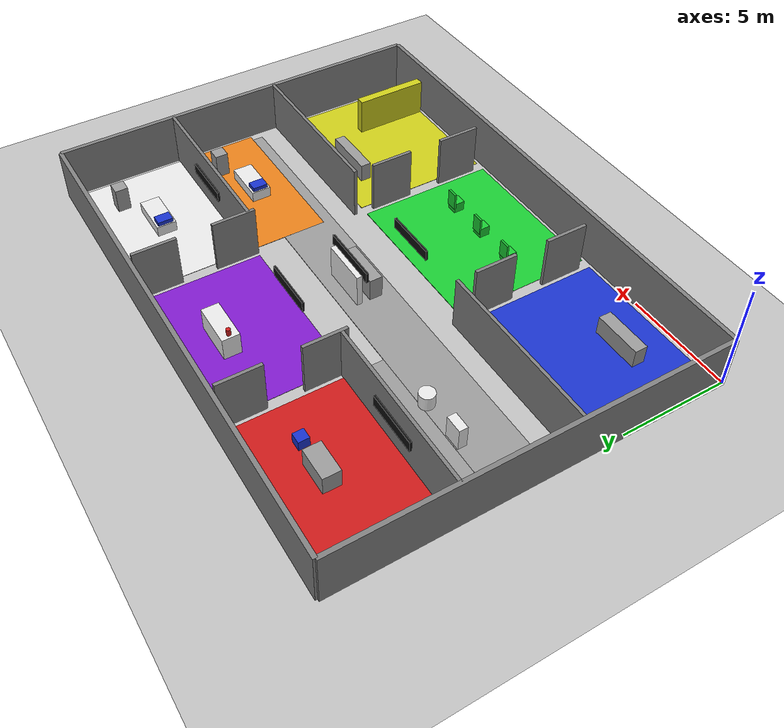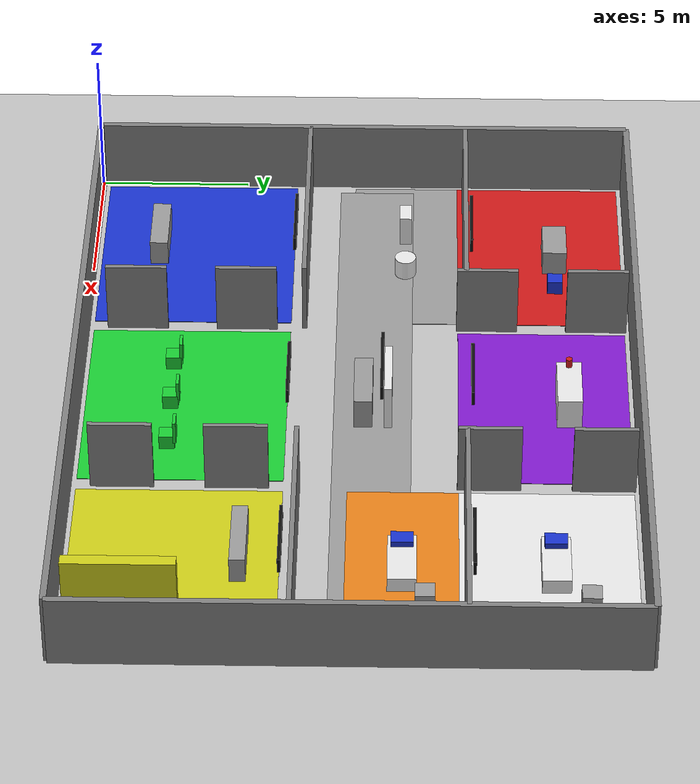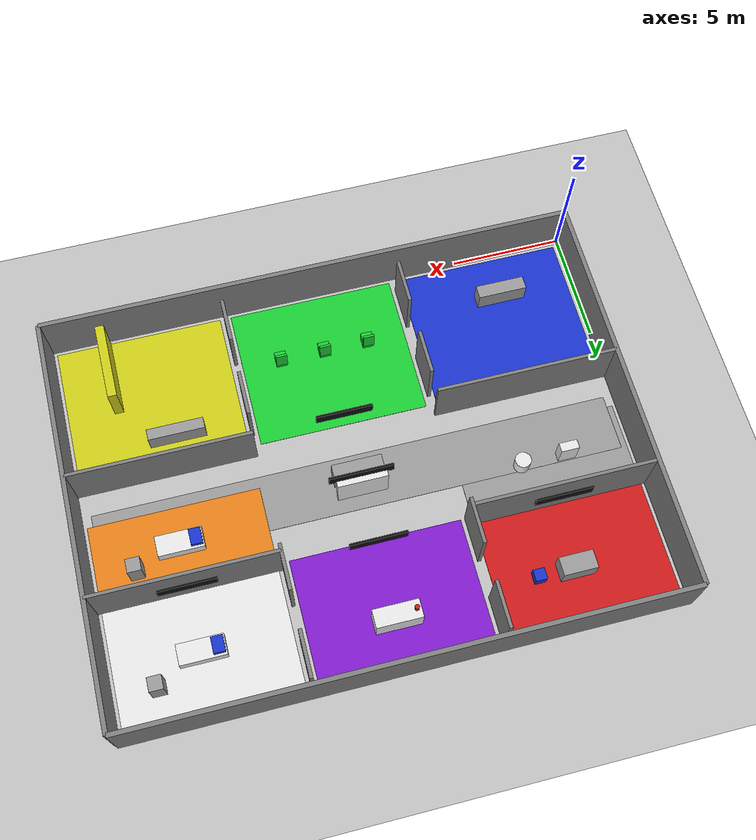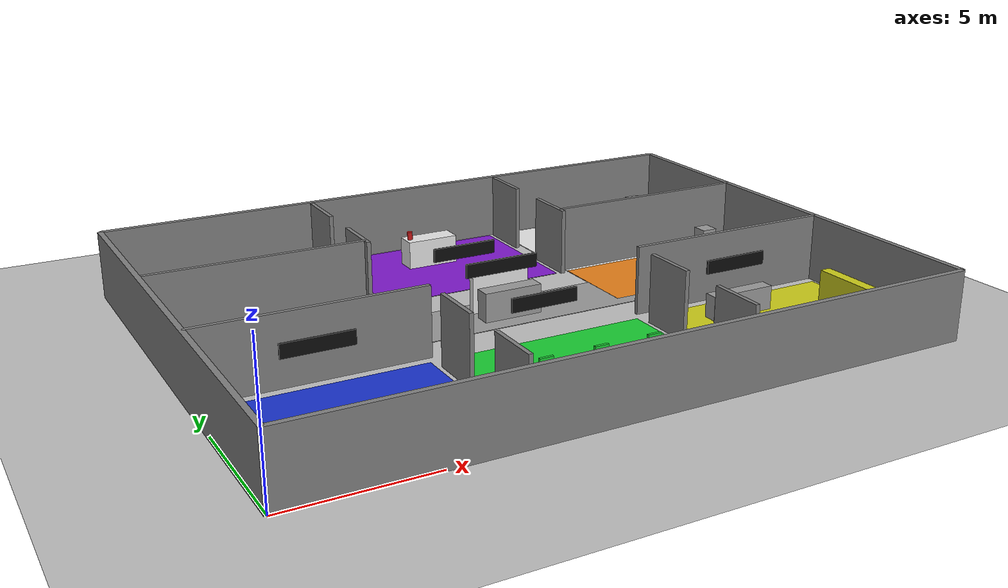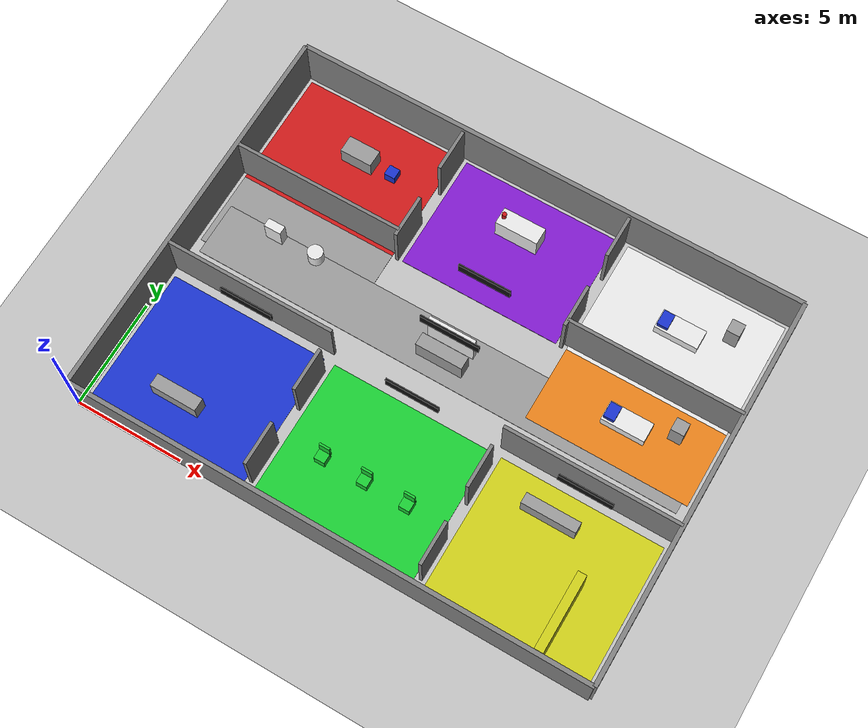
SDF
<sdf version="1.6">
 <world name="hospital_world">
  <gravity>0 0 -9.8</gravity>
  <plugin filename="gz-sim-sensors-system" name="gz::sim::systems::Sensors">
   <render_engine>ogre2</render_engine>
  </plugin>
  <plugin filename="gz-sim-contact-system" name="gz::sim::systems::Contact"/>
  <model name="ground_plane">
   <static>true</static>
   <link name="link">
    <collision name="collision">
     <geometry><plane><normal>0 0 1</normal><size>50 50</size></plane></geometry>
     <surface><friction><ode><mu>100000</mu><mu2>100000</mu2></ode></friction></surface>
    </collision>
    <visual name="visual">
     <geometry><plane><normal>0 0 1</normal><size>50 50</size></plane></geometry>
     <material><ambient>0.75 0.75 0.75 1</ambient><diffuse>0.75 0.75 0.75 1</diffuse></material>
    </visual>
   </link>
  </model>
  <light type="directional" name="sun">
   <cast_shadows>false</cast_shadows>
   <pose>0 0 15 0 0 0</pose>
   <diffuse>1 1 1 1</diffuse>
   <specular>0.5 0.5 0.5 1</specular>
   <direction>-0.5 0.3 -1</direction>
  </light>
  <physics type="ode"><real_time_factor>1.0</real_time_factor><max_step_size>0.005</max_step_size></physics>
  <scene><ambient>0.8 0.8 0.8 1</ambient><background>0.92 0.95 1.0 1</background></scene>
  <model name="outer_wall_bottom">
   <static>true</static>
   <pose>12 0 1.25 0 0 0</pose>
   <link name="link">
    <collision name="collision"><geometry><box><size>24 0.2 2.5</size></box></geometry></collision>
    <visual name="visual">
     <geometry><box><size>24 0.2 2.5</size></box></geometry>
     <material><ambient>0.5 0.5 0.5 1</ambient><diffuse>0.5 0.5 0.5 1</diffuse></material>
    </visual>
   </link>
  </model>
  <model name="outer_wall_top">
   <static>true</static>
   <pose>12 18 1.25 0 0 0</pose>
   <link name="link">
    <collision name="collision"><geometry><box><size>24 0.2 2.5</size></box></geometry></collision>
    <visual name="visual">
     <geometry><box><size>24 0.2 2.5</size></box></geometry>
     <material><ambient>0.5 0.5 0.5 1</ambient><diffuse>0.5 0.5 0.5 1</diffuse></material>
    </visual>
   </link>
  </model>
  <model name="outer_wall_left">
   <static>true</static>
   <pose>0 9 1.25 0 0 0</pose>
   <link name="link">
    <collision name="collision"><geometry><box><size>0.2 18 2.5</size></box></geometry></collision>
    <visual name="visual">
     <geometry><box><size>0.2 18 2.5</size></box></geometry>
     <material><ambient>0.5 0.5 0.5 1</ambient><diffuse>0.5 0.5 0.5 1</diffuse></material>
    </visual>
   </link>
  </model>
  <model name="outer_wall_right">
   <static>true</static>
   <pose>24 9 1.25 0 0 0</pose>
   <link name="link">
    <collision name="collision"><geometry><box><size>0.2 18 2.5</size></box></geometry></collision>
    <visual name="visual">
     <geometry><box><size>0.2 18 2.5</size></box></geometry>
     <material><ambient>0.5 0.5 0.5 1</ambient><diffuse>0.5 0.5 0.5 1</diffuse></material>
    </visual>
   </link>
  </model>
  <model name="floor_reception_blue">
   <static>true</static>
   <pose>4 3.5 0.01 0 0 0</pose>
   <link name="link">
    <visual name="visual">
     <geometry><box><size>7.5 6.5 0.02</size></box></geometry>
     <material><ambient>0.1 0.2 0.8 1</ambient><diffuse>0.1 0.2 0.8 1</diffuse></material>
    </visual>
   </link>
  </model>
  <model name="floor_waiting_green">
   <static>true</static>
   <pose>12 3.5 0.012 0 0 0</pose>
   <link name="link">
    <visual name="visual">
     <geometry><box><size>7.5 6.5 0.02</size></box></geometry>
     <material><ambient>0.1 0.8 0.2 1</ambient><diffuse>0.1 0.8 0.2 1</diffuse></material>
    </visual>
   </link>
  </model>
  <model name="floor_pharmacy_yellow">
   <static>true</static>
   <pose>20 3.5 0.014 0 0 0</pose>
   <link name="link">
    <visual name="visual">
     <geometry><box><size>7.5 6.5 0.02</size></box></geometry>
     <material><ambient>0.8 0.8 0.1 1</ambient><diffuse>0.8 0.8 0.1 1</diffuse></material>
    </visual>
   </link>
  </model>
  <model name="floor_diagnosis_red">
   <static>true</static>
   <pose>4 15 0.016 0 0 0</pose>
   <link name="link">
    <visual name="visual">
     <geometry><box><size>7.5 5.5 0.02</size></box></geometry>
     <material><ambient>0.8 0.1 0.1 1</ambient><diffuse>0.8 0.1 0.1 1</diffuse></material>
    </visual>
   </link>
  </model>
  <model name="floor_lab_purple">
   <static>true</static>
   <pose>12 15 0.018 0 0 0</pose>
   <link name="link">
    <visual name="visual">
     <geometry><box><size>7.5 5.5 0.02</size></box></geometry>
     <material><ambient>0.5 0.1 0.8 1</ambient><diffuse>0.5 0.1 0.8 1</diffuse></material>
    </visual>
   </link>
  </model>
  <model name="floor_ward1_white">
   <static>true</static>
   <pose>20 15 0.02 0 0 0</pose>
   <link name="link">
    <visual name="visual">
     <geometry><box><size>7.5 5.5 0.02</size></box></geometry>
     <material><ambient>0.9 0.9 0.9 1</ambient><diffuse>0.9 0.9 0.9 1</diffuse></material>
    </visual>
   </link>
  </model>
  <model name="floor_restroom_cyan">
   <static>true</static>
   <pose>4 10.5 0.022 0 0 0</pose>
   <link name="link">
    <visual name="visual">
     <geometry><box><size>7.5 3.5 0.02</size></box></geometry>
     <material><ambient>0.6 0.6 0.6 1</ambient><diffuse>0.6 0.6 0.6 1</diffuse></material>
    </visual>
   </link>
  </model>
  <model name="floor_corridor_gray">
   <static>true</static>
   <pose>12 9.5 0.024 0 0 0</pose>
   <link name="link">
    <visual name="visual">
     <geometry><box><size>23 2.5 0.02</size></box></geometry>
     <material><ambient>0.6 0.6 0.6 1</ambient><diffuse>0.6 0.6 0.6 1</diffuse></material>
    </visual>
   </link>
  </model>
  <model name="floor_ward2_orange">
   <static>true</static>
   <pose>20 10.5 0.026 0 0 0</pose>
   <link name="link">
    <visual name="visual">
     <geometry><box><size>7.5 3.5 0.02</size></box></geometry>
     <material><ambient>0.9 0.5 0.1 1</ambient><diffuse>0.9 0.5 0.1 1</diffuse></material>
    </visual>
   </link>
  </model>
  <model name="wall_reception_waiting_1">
   <static>true</static>
   <pose>8 1.7 1.25 0 0 0</pose>
   <link name="link">
    <collision name="collision">
     <geometry><box><size>0.15 1.9999999999999998 2.5</size></box></geometry>
    </collision>
    <visual name="visual">
     <geometry><box><size>0.15 1.9999999999999998 2.5</size></box></geometry>
     <material><ambient>0.5 0.5 0.5 1</ambient><diffuse>0.5 0.5 0.5 1</diffuse></material>
    </visual>
   </link>
  </model>
  <model name="wall_reception_waiting_2">
   <static>true</static>
   <pose>8 5.3 1.25 0 0 0</pose>
   <link name="link">
    <collision name="collision">
     <geometry><box><size>0.15 1.9999999999999998 2.5</size></box></geometry>
    </collision>
    <visual name="visual">
     <geometry><box><size>0.15 1.9999999999999998 2.5</size></box></geometry>
     <material><ambient>0.5 0.5 0.5 1</ambient><diffuse>0.5 0.5 0.5 1</diffuse></material>
    </visual>
   </link>
  </model>
  <model name="wall_waiting_pharmacy_1">
   <static>true</static>
   <pose>16 1.7 1.25 0 0 0</pose>
   <link name="link">
    <collision name="collision">
     <geometry><box><size>0.15 1.9999999999999998 2.5</size></box></geometry>
    </collision>
    <visual name="visual">
     <geometry><box><size>0.15 1.9999999999999998 2.5</size></box></geometry>
     <material><ambient>0.5 0.5 0.5 1</ambient><diffuse>0.5 0.5 0.5 1</diffuse></material>
    </visual>
   </link>
  </model>
  <model name="wall_waiting_pharmacy_2">
   <static>true</static>
   <pose>16 5.3 1.25 0 0 0</pose>
   <link name="link">
    <collision name="collision">
     <geometry><box><size>0.15 1.9999999999999998 2.5</size></box></geometry>
    </collision>
    <visual name="visual">
     <geometry><box><size>0.15 1.9999999999999998 2.5</size></box></geometry>
     <material><ambient>0.5 0.5 0.5 1</ambient><diffuse>0.5 0.5 0.5 1</diffuse></material>
    </visual>
   </link>
  </model>
  <model name="wall_diag_lab_1">
   <static>true</static>
   <pose>8 13.2 1.25 0 0 0</pose>
   <link name="link">
    <collision name="collision">
     <geometry><box><size>0.15 1.9999999999999998 2.5</size></box></geometry>
    </collision>
    <visual name="visual">
     <geometry><box><size>0.15 1.9999999999999998 2.5</size></box></geometry>
     <material><ambient>0.5 0.5 0.5 1</ambient><diffuse>0.5 0.5 0.5 1</diffuse></material>
    </visual>
   </link>
  </model>
  <model name="wall_diag_lab_2">
   <static>true</static>
   <pose>8 16.8 1.25 0 0 0</pose>
   <link name="link">
    <collision name="collision">
     <geometry><box><size>0.15 1.9999999999999998 2.5</size></box></geometry>
    </collision>
    <visual name="visual">
     <geometry><box><size>0.15 1.9999999999999998 2.5</size></box></geometry>
     <material><ambient>0.5 0.5 0.5 1</ambient><diffuse>0.5 0.5 0.5 1</diffuse></material>
    </visual>
   </link>
  </model>
  <model name="wall_lab_ward1_1">
   <static>true</static>
   <pose>16 13.2 1.25 0 0 0</pose>
   <link name="link">
    <collision name="collision">
     <geometry><box><size>0.15 1.9999999999999998 2.5</size></box></geometry>
    </collision>
    <visual name="visual">
     <geometry><box><size>0.15 1.9999999999999998 2.5</size></box></geometry>
     <material><ambient>0.5 0.5 0.5 1</ambient><diffuse>0.5 0.5 0.5 1</diffuse></material>
    </visual>
   </link>
  </model>
  <model name="wall_lab_ward1_2">
   <static>true</static>
   <pose>16 16.8 1.25 0 0 0</pose>
   <link name="link">
    <collision name="collision">
     <geometry><box><size>0.15 1.9999999999999998 2.5</size></box></geometry>
    </collision>
    <visual name="visual">
     <geometry><box><size>0.15 1.9999999999999998 2.5</size></box></geometry>
     <material><ambient>0.5 0.5 0.5 1</ambient><diffuse>0.5 0.5 0.5 1</diffuse></material>
    </visual>
   </link>
  </model>
  <model name="wall_bottom_upper_left">
   <static>true</static>
   <pose>4 7.2 1.25 0 0 0</pose>
   <link name="link">
    <collision name="collision"><geometry><box><size>8 0.15 2.5</size></box></geometry></collision>
    <visual name="visual">
     <geometry><box><size>8 0.15 2.5</size></box></geometry>
     <material><ambient>0.5 0.5 0.5 1</ambient><diffuse>0.5 0.5 0.5 1</diffuse></material>
    </visual>
   </link>
  </model>
  <model name="wall_bottom_upper_right">
   <static>true</static>
   <pose>20 7.2 1.25 0 0 0</pose>
   <link name="link">
    <collision name="collision"><geometry><box><size>8 0.15 2.5</size></box></geometry></collision>
    <visual name="visual">
     <geometry><box><size>8 0.15 2.5</size></box></geometry>
     <material><ambient>0.5 0.5 0.5 1</ambient><diffuse>0.5 0.5 0.5 1</diffuse></material>
    </visual>
   </link>
  </model>
  <model name="wall_top_lower_left">
   <static>true</static>
   <pose>4 12.5 1.25 0 0 0</pose>
   <link name="link">
    <collision name="collision"><geometry><box><size>8 0.15 2.5</size></box></geometry></collision>
    <visual name="visual">
     <geometry><box><size>8 0.15 2.5</size></box></geometry>
     <material><ambient>0.5 0.5 0.5 1</ambient><diffuse>0.5 0.5 0.5 1</diffuse></material>
    </visual>
   </link>
  </model>
  <model name="wall_top_lower_right">
   <static>true</static>
   <pose>20 12.5 1.25 0 0 0</pose>
   <link name="link">
    <collision name="collision"><geometry><box><size>8 0.15 2.5</size></box></geometry></collision>
    <visual name="visual">
     <geometry><box><size>8 0.15 2.5</size></box></geometry>
     <material><ambient>0.5 0.5 0.5 1</ambient><diffuse>0.5 0.5 0.5 1</diffuse></material>
    </visual>
   </link>
  </model>
  <model name="nurse_station_counter">
   <static>true</static>
   <pose>12 9.2 0.55 0 0 0</pose>
   <link name="link">
    <collision name="collision"><geometry><box><size>2.2 0.6 1.1</size></box></geometry></collision>
    <visual name="visual">
     <geometry><box><size>2.2 0.6 1.1</size></box></geometry>
     <material><ambient>0.6 0.6 0.6 1</ambient><diffuse>0.6 0.6 0.6 1</diffuse></material>
    </visual>
   </link>
  </model>
  <model name="nurse_station_back">
   <static>true</static>
   <pose>12 10.0 0.8 0 0 0</pose>
   <link name="link">
    <collision name="collision"><geometry><box><size>2.2 0.25 1.6</size></box></geometry></collision>
    <visual name="visual">
     <geometry><box><size>2.2 0.25 1.6</size></box></geometry>
     <material><ambient>0.9 0.9 0.9 1</ambient><diffuse>0.9 0.9 0.9 1</diffuse></material>
    </visual>
   </link>
  </model>
  <model name="reception_desk">
   <static>true</static>
   <pose>3.5 2.2 0.45 0 0 0</pose>
   <link name="link">
    <collision name="collision"><geometry><box><size>2.2 0.6 0.9</size></box></geometry></collision>
    <visual name="visual">
     <geometry><box><size>2.2 0.6 0.9</size></box></geometry>
     <material><ambient>0.6 0.6 0.6 1</ambient><diffuse>0.6 0.6 0.6 1</diffuse></material>
    </visual>
   </link>
  </model>
  <model name="waiting_chair_0">
   <static>true</static>
   <pose>10 3.0 0.25 0 0 0</pose>
   <link name="link">
    <collision name="collision"><geometry><box><size>0.5 0.5 0.5</size></box></geometry></collision>
    <visual name="visual">
     <geometry><box><size>0.5 0.5 0.5</size></box></geometry>
     <material><ambient>0.1 0.8 0.2 1</ambient><diffuse>0.1 0.8 0.2 1</diffuse></material>
    </visual>
   </link>
  </model>
  <model name="waiting_chair_back_0">
   <static>true</static>
   <pose>10 3.25 0.65 0 0 0</pose>
   <link name="link">
    <collision name="collision"><geometry><box><size>0.5 0.1 0.8</size></box></geometry></collision>
    <visual name="visual">
     <geometry><box><size>0.5 0.1 0.8</size></box></geometry>
     <material><ambient>0.1 0.8 0.2 1</ambient><diffuse>0.1 0.8 0.2 1</diffuse></material>
    </visual>
   </link>
  </model>
  <model name="waiting_chair_1">
   <static>true</static>
   <pose>12 3.0 0.25 0 0 0</pose>
   <link name="link">
    <collision name="collision"><geometry><box><size>0.5 0.5 0.5</size></box></geometry></collision>
    <visual name="visual">
     <geometry><box><size>0.5 0.5 0.5</size></box></geometry>
     <material><ambient>0.1 0.8 0.2 1</ambient><diffuse>0.1 0.8 0.2 1</diffuse></material>
    </visual>
   </link>
  </model>
  <model name="waiting_chair_back_1">
   <static>true</static>
   <pose>12 3.25 0.65 0 0 0</pose>
   <link name="link">
    <collision name="collision"><geometry><box><size>0.5 0.1 0.8</size></box></geometry></collision>
    <visual name="visual">
     <geometry><box><size>0.5 0.1 0.8</size></box></geometry>
     <material><ambient>0.1 0.8 0.2 1</ambient><diffuse>0.1 0.8 0.2 1</diffuse></material>
    </visual>
   </link>
  </model>
  <model name="waiting_chair_2">
   <static>true</static>
   <pose>14 3.0 0.25 0 0 0</pose>
   <link name="link">
    <collision name="collision"><geometry><box><size>0.5 0.5 0.5</size></box></geometry></collision>
    <visual name="visual">
     <geometry><box><size>0.5 0.5 0.5</size></box></geometry>
     <material><ambient>0.1 0.8 0.2 1</ambient><diffuse>0.1 0.8 0.2 1</diffuse></material>
    </visual>
   </link>
  </model>
  <model name="waiting_chair_back_2">
   <static>true</static>
   <pose>14 3.25 0.65 0 0 0</pose>
   <link name="link">
    <collision name="collision"><geometry><box><size>0.5 0.1 0.8</size></box></geometry></collision>
    <visual name="visual">
     <geometry><box><size>0.5 0.1 0.8</size></box></geometry>
     <material><ambient>0.1 0.8 0.2 1</ambient><diffuse>0.1 0.8 0.2 1</diffuse></material>
    </visual>
   </link>
  </model>
  <model name="pharmacy_shelf_1">
   <static>true</static>
   <pose>21.5 2.0 0.9 0 0 0</pose>
   <link name="link">
    <collision name="collision"><geometry><box><size>0.4 3.5 1.8</size></box></geometry></collision>
    <visual name="visual">
     <geometry><box><size>0.4 3.5 1.8</size></box></geometry>
     <material><ambient>0.8 0.8 0.1 1</ambient><diffuse>0.8 0.8 0.1 1</diffuse></material>
    </visual>
   </link>
  </model>
  <model name="pharmacy_counter">
   <static>true</static>
   <pose>19.2 5.5 0.45 0 0 0</pose>
   <link name="link">
    <collision name="collision"><geometry><box><size>2.5 0.5 0.9</size></box></geometry></collision>
    <visual name="visual">
     <geometry><box><size>2.5 0.5 0.9</size></box></geometry>
     <material><ambient>0.6 0.6 0.6 1</ambient><diffuse>0.6 0.6 0.6 1</diffuse></material>
    </visual>
   </link>
  </model>
  <model name="diagnosis_table">
   <static>true</static>
   <pose>4.2 15.5 0.45 0 0 0</pose>
   <link name="link">
    <collision name="collision"><geometry><box><size>1.5 0.8 0.9</size></box></geometry></collision>
    <visual name="visual">
     <geometry><box><size>1.5 0.8 0.9</size></box></geometry>
     <material><ambient>0.6 0.6 0.6 1</ambient><diffuse>0.6 0.6 0.6 1</diffuse></material>
    </visual>
   </link>
  </model>
  <model name="diagnosis_chair">
   <static>true</static>
   <pose>5.8 15.5 0.25 0 0 0</pose>
   <link name="link">
    <collision name="collision"><geometry><box><size>0.5 0.5 0.5</size></box></geometry></collision>
    <visual name="visual">
     <geometry><box><size>0.5 0.5 0.5</size></box></geometry>
     <material><ambient>0.1 0.2 0.8 1</ambient><diffuse>0.1 0.2 0.8 1</diffuse></material>
    </visual>
   </link>
  </model>
  <model name="lab_table">
   <static>true</static>
   <pose>12 15.8 0.55 0 0 0</pose>
   <link name="link">
    <collision name="collision"><geometry><box><size>2.0 0.8 1.1</size></box></geometry></collision>
    <visual name="visual">
     <geometry><box><size>2.0 0.8 1.1</size></box></geometry>
     <material><ambient>0.9 0.9 0.9 1</ambient><diffuse>0.9 0.9 0.9 1</diffuse></material>
    </visual>
   </link>
  </model>
  <model name="lab_sample_tube">
   <static>true</static>
   <pose>11.2 15.8 1.2 0 0 0</pose>
   <link name="link">
    <collision name="collision">
     <geometry><cylinder><radius>0.1</radius><length>0.4</length></cylinder></geometry>
    </collision>
    <visual name="visual">
     <geometry><cylinder><radius>0.1</radius><length>0.4</length></cylinder></geometry>
     <material><ambient>0.8 0.1 0.1 1</ambient><diffuse>0.8 0.1 0.1 1</diffuse></material>
    </visual>
   </link>
  </model>
  <model name="ward1_bed">
   <static>true</static>
   <pose>20 15.2 0.45 0 0 0</pose>
   <link name="link">
    <collision name="collision"><geometry><box><size>2.0 0.9 0.5</size></box></geometry></collision>
    <visual name="visual">
     <geometry><box><size>2.0 0.9 0.5</size></box></geometry>
     <material><ambient>0.9 0.9 0.9 1</ambient><diffuse>0.9 0.9 0.9 1</diffuse></material>
    </visual>
   </link>
  </model>
  <model name="ward1_pillow">
   <static>true</static>
   <pose>19.3 15.2 0.8 0 0 0</pose>
   <link name="link">
    <collision name="collision"><geometry><box><size>0.5 0.7 0.2</size></box></geometry></collision>
    <visual name="visual">
     <geometry><box><size>0.5 0.7 0.2</size></box></geometry>
     <material><ambient>0.1 0.2 0.8 1</ambient><diffuse>0.1 0.2 0.8 1</diffuse></material>
    </visual>
   </link>
  </model>
  <model name="ward1_cabinet">
   <static>true</static>
   <pose>22 16.2 0.6 0 0 0</pose>
   <link name="link">
    <collision name="collision"><geometry><box><size>0.6 0.6 1.2</size></box></geometry></collision>
    <visual name="visual">
     <geometry><box><size>0.6 0.6 1.2</size></box></geometry>
     <material><ambient>0.6 0.6 0.6 1</ambient><diffuse>0.6 0.6 0.6 1</diffuse></material>
    </visual>
   </link>
  </model>
  <model name="ward2_bed">
   <static>true</static>
   <pose>20 10.5 0.45 0 0 0</pose>
   <link name="link">
    <collision name="collision"><geometry><box><size>2.0 0.9 0.5</size></box></geometry></collision>
    <visual name="visual">
     <geometry><box><size>2.0 0.9 0.5</size></box></geometry>
     <material><ambient>0.9 0.9 0.9 1</ambient><diffuse>0.9 0.9 0.9 1</diffuse></material>
    </visual>
   </link>
  </model>
  <model name="ward2_pillow">
   <static>true</static>
   <pose>19.3 10.5 0.8 0 0 0</pose>
   <link name="link">
    <collision name="collision"><geometry><box><size>0.5 0.7 0.2</size></box></geometry></collision>
    <visual name="visual">
     <geometry><box><size>0.5 0.7 0.2</size></box></geometry>
     <material><ambient>0.1 0.2 0.8 1</ambient><diffuse>0.1 0.2 0.8 1</diffuse></material>
    </visual>
   </link>
  </model>
  <model name="ward2_cabinet">
   <static>true</static>
   <pose>22 11.2 0.6 0 0 0</pose>
   <link name="link">
    <collision name="collision"><geometry><box><size>0.6 0.6 1.2</size></box></geometry></collision>
    <visual name="visual">
     <geometry><box><size>0.6 0.6 1.2</size></box></geometry>
     <material><ambient>0.6 0.6 0.6 1</ambient><diffuse>0.6 0.6 0.6 1</diffuse></material>
    </visual>
   </link>
  </model>
  <model name="restroom_sink">
   <static>true</static>
   <pose>3.0 10.5 0.55 0 0 0</pose>
   <link name="link">
    <collision name="collision"><geometry><box><size>0.8 0.4 1.1</size></box></geometry></collision>
    <visual name="visual">
     <geometry><box><size>0.8 0.4 1.1</size></box></geometry>
     <material><ambient>0.9 0.9 0.9 1</ambient><diffuse>0.9 0.9 0.9 1</diffuse></material>
    </visual>
   </link>
  </model>
  <model name="restroom_toilet">
   <static>true</static>
   <pose>5.0 10.5 0.35 0 0 0</pose>
   <link name="link">
    <collision name="collision">
     <geometry><cylinder><radius>0.35</radius><length>0.7</length></cylinder></geometry>
    </collision>
    <visual name="visual">
     <geometry><cylinder><radius>0.35</radius><length>0.7</length></cylinder></geometry>
     <material><ambient>0.9 0.9 0.9 1</ambient><diffuse>0.9 0.9 0.9 1</diffuse></material>
    </visual>
   </link>
  </model>
  <model name="SIGN_RECEPTION">
   <static>true</static>
   <pose>4 6.8 1.4 0 0 0</pose>
   <link name="link">
    <collision name="collision"><geometry><box><size>2.5 0.1 0.5</size></box></geometry></collision>
    <visual name="visual">
     <geometry><box><size>2.5 0.1 0.5</size></box></geometry>
     <material><ambient>0.05 0.05 0.05 1</ambient><diffuse>0.05 0.05 0.05 1</diffuse></material>
    </visual>
   </link>
  </model>
  <model name="SIGN_WAITING">
   <static>true</static>
   <pose>12 6.8 1.4 0 0 0</pose>
   <link name="link">
    <collision name="collision"><geometry><box><size>2.5 0.1 0.5</size></box></geometry></collision>
    <visual name="visual">
     <geometry><box><size>2.5 0.1 0.5</size></box></geometry>
     <material><ambient>0.05 0.05 0.05 1</ambient><diffuse>0.05 0.05 0.05 1</diffuse></material>
    </visual>
   </link>
  </model>
  <model name="SIGN_PHARMACY">
   <static>true</static>
   <pose>20 6.8 1.4 0 0 0</pose>
   <link name="link">
    <collision name="collision"><geometry><box><size>2.5 0.1 0.5</size></box></geometry></collision>
    <visual name="visual">
     <geometry><box><size>2.5 0.1 0.5</size></box></geometry>
     <material><ambient>0.05 0.05 0.05 1</ambient><diffuse>0.05 0.05 0.05 1</diffuse></material>
    </visual>
   </link>
  </model>
  <model name="SIGN_DIAGNOSIS">
   <static>true</static>
   <pose>4 12.7 1.4 0 0 0</pose>
   <link name="link">
    <collision name="collision"><geometry><box><size>2.5 0.1 0.5</size></box></geometry></collision>
    <visual name="visual">
     <geometry><box><size>2.5 0.1 0.5</size></box></geometry>
     <material><ambient>0.05 0.05 0.05 1</ambient><diffuse>0.05 0.05 0.05 1</diffuse></material>
    </visual>
   </link>
  </model>
  <model name="SIGN_LAB">
   <static>true</static>
   <pose>12 12.7 1.4 0 0 0</pose>
   <link name="link">
    <collision name="collision"><geometry><box><size>2.5 0.1 0.5</size></box></geometry></collision>
    <visual name="visual">
     <geometry><box><size>2.5 0.1 0.5</size></box></geometry>
     <material><ambient>0.05 0.05 0.05 1</ambient><diffuse>0.05 0.05 0.05 1</diffuse></material>
    </visual>
   </link>
  </model>
  <model name="SIGN_WARD1">
   <static>true</static>
   <pose>20 12.7 1.4 0 0 0</pose>
   <link name="link">
    <collision name="collision"><geometry><box><size>2.5 0.1 0.5</size></box></geometry></collision>
    <visual name="visual">
     <geometry><box><size>2.5 0.1 0.5</size></box></geometry>
     <material><ambient>0.05 0.05 0.05 1</ambient><diffuse>0.05 0.05 0.05 1</diffuse></material>
    </visual>
   </link>
  </model>
  <model name="SIGN_NURSE_STATION">
   <static>true</static>
   <pose>12 9.8 1.7 0 0 0</pose>
   <link name="link">
    <collision name="collision"><geometry><box><size>2.8 0.1 0.5</size></box></geometry></collision>
    <visual name="visual">
     <geometry><box><size>2.8 0.1 0.5</size></box></geometry>
     <material><ambient>0.05 0.05 0.05 1</ambient><diffuse>0.05 0.05 0.05 1</diffuse></material>
    </visual>
   </link>
  </model>
  <model name="top_camera">
   <static>1</static>
   <pose>12 9 14 0 0 0</pose>
   <link name="link">
    <sensor name="top_camera_sensor" type="camera">
     <always_on>true</always_on>
     <visualize>true</visualize>
     <update_rate>1</update_rate>
     <topic>top_camera/image_raw</topic>
     <camera name="top_cam">
      <horizontal_fov>1.5</horizontal_fov>
      <image><width>320</width><height>240</height><format>R8G8B8</format></image>
      <clip><near>0.1</near><far>100</far></clip>
     </camera>
     <pose>0 0 0 0 1.5707963267948966 0</pose>
    </sensor>
   </link>
  </model>
 </world>
</sdf>
